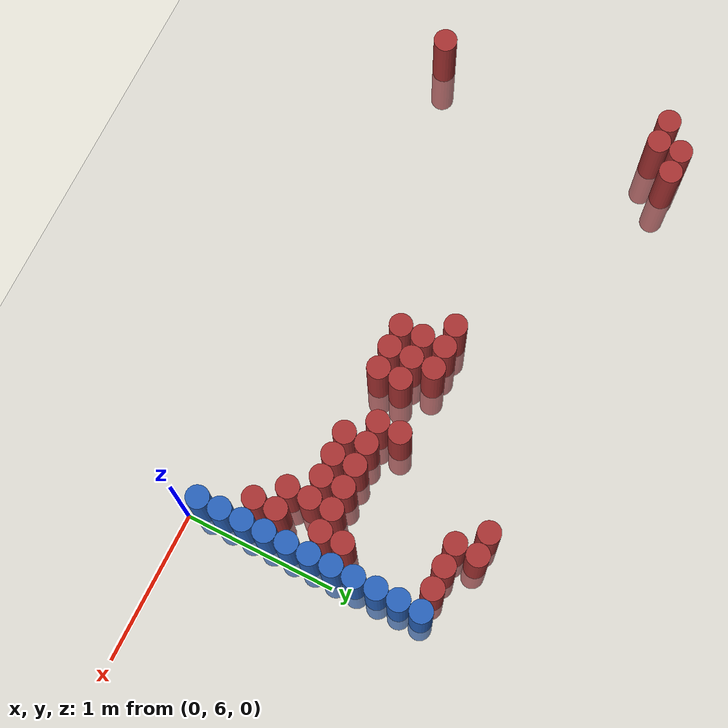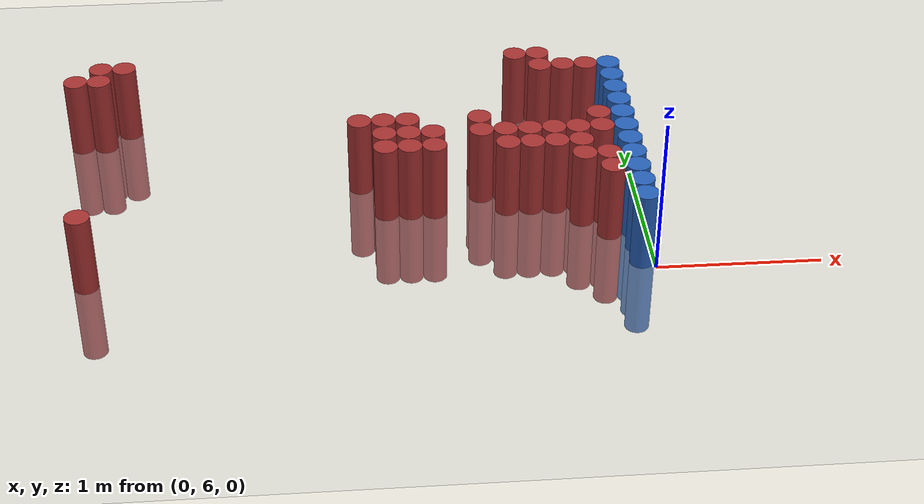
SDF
<sdf version="1.6">
 <world name="default">
  <model name="ground_plane">
   <static>1</static>
   <link name="link">
    <collision name="collision">
     <geometry><plane><normal>0 0 1</normal><size>100 100</size></plane></geometry>
     <surface><friction><ode><mu>100</mu><mu2>50</mu2></ode></friction></surface>
    </collision>
    <visual name="visual">
     <cast_shadows>0</cast_shadows>
     <geometry><plane><normal>0 0 1</normal><size>100 100</size></plane></geometry>
     <material>
      <script><uri>file://media/materials/scripts/gazebo.material</uri><name>Gazebo/Grey</name></script>
     </material>
    </visual>
   </link>
  </model>
  <model name="unit_cylinder_158">
   <static>1</static>
   <pose>-3.525000 7.575000 0.000000 0.000000 0.000000 0.000000</pose>
   <link name="link">
    <inertial>
     <mass>1</mass>
     <inertia><ixx>0.145833</ixx><ixy>0</ixy><ixz>0</ixz><iyy>0.145833</iyy><iyz>0</iyz><izz>0.125</izz></inertia>
    </inertial>
    <collision name="collision">
     <geometry><cylinder><radius>0.075000</radius><length>1</length></cylinder></geometry>
    </collision>
    <visual name="visual">
     <geometry><cylinder><radius>0.075000</radius><length>1</length></cylinder></geometry>
     <material>
      <ambient>0.648000 0.192000 0.192000 1</ambient>
      <diffuse>0.648000 0.192000 0.192000 1</diffuse>
     </material>
     <material>
      <script><name>Gazebo/Grey</name><uri>file://media/materials/scripts/gazebo.material</uri></script>
     </material>
    </visual>
   </link>
  </model>
  <model name="unit_cylinder_161">
   <static>1</static>
   <pose>-3.375000 6.075000 0.000000 0.000000 0.000000 0.000000</pose>
   <link name="link">
    <inertial>
     <mass>1</mass>
     <inertia><ixx>0.145833</ixx><ixy>0</ixy><ixz>0</ixz><iyy>0.145833</iyy><iyz>0</iyz><izz>0.125</izz></inertia>
    </inertial>
    <collision name="collision">
     <geometry><cylinder><radius>0.075000</radius><length>1</length></cylinder></geometry>
    </collision>
    <visual name="visual">
     <geometry><cylinder><radius>0.075000</radius><length>1</length></cylinder></geometry>
     <material>
      <ambient>0.648000 0.192000 0.192000 1</ambient>
      <diffuse>0.648000 0.192000 0.192000 1</diffuse>
     </material>
     <material>
      <script><name>Gazebo/Grey</name><uri>file://media/materials/scripts/gazebo.material</uri></script>
     </material>
    </visual>
   </link>
  </model>
  <model name="unit_cylinder_162">
   <static>1</static>
   <pose>-3.375000 7.575000 0.000000 0.000000 0.000000 0.000000</pose>
   <link name="link">
    <inertial>
     <mass>1</mass>
     <inertia><ixx>0.145833</ixx><ixy>0</ixy><ixz>0</ixz><iyy>0.145833</iyy><iyz>0</iyz><izz>0.125</izz></inertia>
    </inertial>
    <collision name="collision">
     <geometry><cylinder><radius>0.075000</radius><length>1</length></cylinder></geometry>
    </collision>
    <visual name="visual">
     <geometry><cylinder><radius>0.075000</radius><length>1</length></cylinder></geometry>
     <material>
      <ambient>0.648000 0.192000 0.192000 1</ambient>
      <diffuse>0.648000 0.192000 0.192000 1</diffuse>
     </material>
     <material>
      <script><name>Gazebo/Grey</name><uri>file://media/materials/scripts/gazebo.material</uri></script>
     </material>
    </visual>
   </link>
  </model>
  <model name="unit_cylinder_163">
   <static>1</static>
   <pose>-3.375000 7.725000 0.000000 0.000000 0.000000 0.000000</pose>
   <link name="link">
    <inertial>
     <mass>1</mass>
     <inertia><ixx>0.145833</ixx><ixy>0</ixy><ixz>0</ixz><iyy>0.145833</iyy><iyz>0</iyz><izz>0.125</izz></inertia>
    </inertial>
    <collision name="collision">
     <geometry><cylinder><radius>0.075000</radius><length>1</length></cylinder></geometry>
    </collision>
    <visual name="visual">
     <geometry><cylinder><radius>0.075000</radius><length>1</length></cylinder></geometry>
     <material>
      <ambient>0.648000 0.192000 0.192000 1</ambient>
      <diffuse>0.648000 0.192000 0.192000 1</diffuse>
     </material>
     <material>
      <script><name>Gazebo/Grey</name><uri>file://media/materials/scripts/gazebo.material</uri></script>
     </material>
    </visual>
   </link>
  </model>
  <model name="unit_cylinder_165">
   <static>1</static>
   <pose>-3.225000 7.725000 0.000000 0.000000 0.000000 0.000000</pose>
   <link name="link">
    <inertial>
     <mass>1</mass>
     <inertia><ixx>0.145833</ixx><ixy>0</ixy><ixz>0</ixz><iyy>0.145833</iyy><iyz>0</iyz><izz>0.125</izz></inertia>
    </inertial>
    <collision name="collision">
     <geometry><cylinder><radius>0.075000</radius><length>1</length></cylinder></geometry>
    </collision>
    <visual name="visual">
     <geometry><cylinder><radius>0.075000</radius><length>1</length></cylinder></geometry>
     <material>
      <ambient>0.648000 0.192000 0.192000 1</ambient>
      <diffuse>0.648000 0.192000 0.192000 1</diffuse>
     </material>
     <material>
      <script><name>Gazebo/Grey</name><uri>file://media/materials/scripts/gazebo.material</uri></script>
     </material>
    </visual>
   </link>
  </model>
  <model name="unit_cylinder_177">
   <static>1</static>
   <pose>-1.725000 6.975000 0.000000 0.000000 0.000000 0.000000</pose>
   <link name="link">
    <inertial>
     <mass>1</mass>
     <inertia><ixx>0.145833</ixx><ixy>0</ixy><ixz>0</ixz><iyy>0.145833</iyy><iyz>0</iyz><izz>0.125</izz></inertia>
    </inertial>
    <collision name="collision">
     <geometry><cylinder><radius>0.075000</radius><length>1</length></cylinder></geometry>
    </collision>
    <visual name="visual">
     <geometry><cylinder><radius>0.075000</radius><length>1</length></cylinder></geometry>
     <material>
      <ambient>0.648000 0.192000 0.192000 1</ambient>
      <diffuse>0.648000 0.192000 0.192000 1</diffuse>
     </material>
     <material>
      <script><name>Gazebo/Grey</name><uri>file://media/materials/scripts/gazebo.material</uri></script>
     </material>
    </visual>
   </link>
  </model>
  <model name="unit_cylinder_182">
   <static>1</static>
   <pose>-1.575000 6.675000 0.000000 0.000000 0.000000 0.000000</pose>
   <link name="link">
    <inertial>
     <mass>1</mass>
     <inertia><ixx>0.145833</ixx><ixy>0</ixy><ixz>0</ixz><iyy>0.145833</iyy><iyz>0</iyz><izz>0.125</izz></inertia>
    </inertial>
    <collision name="collision">
     <geometry><cylinder><radius>0.075000</radius><length>1</length></cylinder></geometry>
    </collision>
    <visual name="visual">
     <geometry><cylinder><radius>0.075000</radius><length>1</length></cylinder></geometry>
     <material>
      <ambient>0.648000 0.192000 0.192000 1</ambient>
      <diffuse>0.648000 0.192000 0.192000 1</diffuse>
     </material>
     <material>
      <script><name>Gazebo/Grey</name><uri>file://media/materials/scripts/gazebo.material</uri></script>
     </material>
    </visual>
   </link>
  </model>
  <model name="unit_cylinder_183">
   <static>1</static>
   <pose>-1.575000 6.825000 0.000000 0.000000 0.000000 0.000000</pose>
   <link name="link">
    <inertial>
     <mass>1</mass>
     <inertia><ixx>0.145833</ixx><ixy>0</ixy><ixz>0</ixz><iyy>0.145833</iyy><iyz>0</iyz><izz>0.125</izz></inertia>
    </inertial>
    <collision name="collision">
     <geometry><cylinder><radius>0.075000</radius><length>1</length></cylinder></geometry>
    </collision>
    <visual name="visual">
     <geometry><cylinder><radius>0.075000</radius><length>1</length></cylinder></geometry>
     <material>
      <ambient>0.648000 0.192000 0.192000 1</ambient>
      <diffuse>0.648000 0.192000 0.192000 1</diffuse>
     </material>
     <material>
      <script><name>Gazebo/Grey</name><uri>file://media/materials/scripts/gazebo.material</uri></script>
     </material>
    </visual>
   </link>
  </model>
  <model name="unit_cylinder_184">
   <static>1</static>
   <pose>-1.575000 6.975000 0.000000 0.000000 0.000000 0.000000</pose>
   <link name="link">
    <inertial>
     <mass>1</mass>
     <inertia><ixx>0.145833</ixx><ixy>0</ixy><ixz>0</ixz><iyy>0.145833</iyy><iyz>0</iyz><izz>0.125</izz></inertia>
    </inertial>
    <collision name="collision">
     <geometry><cylinder><radius>0.075000</radius><length>1</length></cylinder></geometry>
    </collision>
    <visual name="visual">
     <geometry><cylinder><radius>0.075000</radius><length>1</length></cylinder></geometry>
     <material>
      <ambient>0.648000 0.192000 0.192000 1</ambient>
      <diffuse>0.648000 0.192000 0.192000 1</diffuse>
     </material>
     <material>
      <script><name>Gazebo/Grey</name><uri>file://media/materials/scripts/gazebo.material</uri></script>
     </material>
    </visual>
   </link>
  </model>
  <model name="unit_cylinder_188">
   <static>1</static>
   <pose>-1.425000 6.675000 0.000000 0.000000 0.000000 0.000000</pose>
   <link name="link">
    <inertial>
     <mass>1</mass>
     <inertia><ixx>0.145833</ixx><ixy>0</ixy><ixz>0</ixz><iyy>0.145833</iyy><iyz>0</iyz><izz>0.125</izz></inertia>
    </inertial>
    <collision name="collision">
     <geometry><cylinder><radius>0.075000</radius><length>1</length></cylinder></geometry>
    </collision>
    <visual name="visual">
     <geometry><cylinder><radius>0.075000</radius><length>1</length></cylinder></geometry>
     <material>
      <ambient>0.648000 0.192000 0.192000 1</ambient>
      <diffuse>0.648000 0.192000 0.192000 1</diffuse>
     </material>
     <material>
      <script><name>Gazebo/Grey</name><uri>file://media/materials/scripts/gazebo.material</uri></script>
     </material>
    </visual>
   </link>
  </model>
  <model name="unit_cylinder_189">
   <static>1</static>
   <pose>-1.425000 6.825000 0.000000 0.000000 0.000000 0.000000</pose>
   <link name="link">
    <inertial>
     <mass>1</mass>
     <inertia><ixx>0.145833</ixx><ixy>0</ixy><ixz>0</ixz><iyy>0.145833</iyy><iyz>0</iyz><izz>0.125</izz></inertia>
    </inertial>
    <collision name="collision">
     <geometry><cylinder><radius>0.075000</radius><length>1</length></cylinder></geometry>
    </collision>
    <visual name="visual">
     <geometry><cylinder><radius>0.075000</radius><length>1</length></cylinder></geometry>
     <material>
      <ambient>0.648000 0.192000 0.192000 1</ambient>
      <diffuse>0.648000 0.192000 0.192000 1</diffuse>
     </material>
     <material>
      <script><name>Gazebo/Grey</name><uri>file://media/materials/scripts/gazebo.material</uri></script>
     </material>
    </visual>
   </link>
  </model>
  <model name="unit_cylinder_190">
   <static>1</static>
   <pose>-1.425000 6.975000 0.000000 0.000000 0.000000 0.000000</pose>
   <link name="link">
    <inertial>
     <mass>1</mass>
     <inertia><ixx>0.145833</ixx><ixy>0</ixy><ixz>0</ixz><iyy>0.145833</iyy><iyz>0</iyz><izz>0.125</izz></inertia>
    </inertial>
    <collision name="collision">
     <geometry><cylinder><radius>0.075000</radius><length>1</length></cylinder></geometry>
    </collision>
    <visual name="visual">
     <geometry><cylinder><radius>0.075000</radius><length>1</length></cylinder></geometry>
     <material>
      <ambient>0.648000 0.192000 0.192000 1</ambient>
      <diffuse>0.648000 0.192000 0.192000 1</diffuse>
     </material>
     <material>
      <script><name>Gazebo/Grey</name><uri>file://media/materials/scripts/gazebo.material</uri></script>
     </material>
    </visual>
   </link>
  </model>
  <model name="unit_cylinder_193">
   <static>1</static>
   <pose>-1.275000 6.675000 0.000000 0.000000 0.000000 0.000000</pose>
   <link name="link">
    <inertial>
     <mass>1</mass>
     <inertia><ixx>0.145833</ixx><ixy>0</ixy><ixz>0</ixz><iyy>0.145833</iyy><iyz>0</iyz><izz>0.125</izz></inertia>
    </inertial>
    <collision name="collision">
     <geometry><cylinder><radius>0.075000</radius><length>1</length></cylinder></geometry>
    </collision>
    <visual name="visual">
     <geometry><cylinder><radius>0.075000</radius><length>1</length></cylinder></geometry>
     <material>
      <ambient>0.648000 0.192000 0.192000 1</ambient>
      <diffuse>0.648000 0.192000 0.192000 1</diffuse>
     </material>
     <material>
      <script><name>Gazebo/Grey</name><uri>file://media/materials/scripts/gazebo.material</uri></script>
     </material>
    </visual>
   </link>
  </model>
  <model name="unit_cylinder_194">
   <static>1</static>
   <pose>-1.275000 6.825000 0.000000 0.000000 0.000000 0.000000</pose>
   <link name="link">
    <inertial>
     <mass>1</mass>
     <inertia><ixx>0.145833</ixx><ixy>0</ixy><ixz>0</ixz><iyy>0.145833</iyy><iyz>0</iyz><izz>0.125</izz></inertia>
    </inertial>
    <collision name="collision">
     <geometry><cylinder><radius>0.075000</radius><length>1</length></cylinder></geometry>
    </collision>
    <visual name="visual">
     <geometry><cylinder><radius>0.075000</radius><length>1</length></cylinder></geometry>
     <material>
      <ambient>0.648000 0.192000 0.192000 1</ambient>
      <diffuse>0.648000 0.192000 0.192000 1</diffuse>
     </material>
     <material>
      <script><name>Gazebo/Grey</name><uri>file://media/materials/scripts/gazebo.material</uri></script>
     </material>
    </visual>
   </link>
  </model>
  <model name="unit_cylinder_199">
   <static>1</static>
   <pose>-0.975000 6.825000 0.000000 0.000000 0.000000 0.000000</pose>
   <link name="link">
    <inertial>
     <mass>1</mass>
     <inertia><ixx>0.145833</ixx><ixy>0</ixy><ixz>0</ixz><iyy>0.145833</iyy><iyz>0</iyz><izz>0.125</izz></inertia>
    </inertial>
    <collision name="collision">
     <geometry><cylinder><radius>0.075000</radius><length>1</length></cylinder></geometry>
    </collision>
    <visual name="visual">
     <geometry><cylinder><radius>0.075000</radius><length>1</length></cylinder></geometry>
     <material>
      <ambient>0.648000 0.192000 0.192000 1</ambient>
      <diffuse>0.648000 0.192000 0.192000 1</diffuse>
     </material>
     <material>
      <script><name>Gazebo/Grey</name><uri>file://media/materials/scripts/gazebo.material</uri></script>
     </material>
    </visual>
   </link>
  </model>
  <model name="unit_cylinder_200">
   <static>1</static>
   <pose>-0.975000 6.975000 0.000000 0.000000 0.000000 0.000000</pose>
   <link name="link">
    <inertial>
     <mass>1</mass>
     <inertia><ixx>0.145833</ixx><ixy>0</ixy><ixz>0</ixz><iyy>0.145833</iyy><iyz>0</iyz><izz>0.125</izz></inertia>
    </inertial>
    <collision name="collision">
     <geometry><cylinder><radius>0.075000</radius><length>1</length></cylinder></geometry>
    </collision>
    <visual name="visual">
     <geometry><cylinder><radius>0.075000</radius><length>1</length></cylinder></geometry>
     <material>
      <ambient>0.648000 0.192000 0.192000 1</ambient>
      <diffuse>0.648000 0.192000 0.192000 1</diffuse>
     </material>
     <material>
      <script><name>Gazebo/Grey</name><uri>file://media/materials/scripts/gazebo.material</uri></script>
     </material>
    </visual>
   </link>
  </model>
  <model name="unit_cylinder_202">
   <static>1</static>
   <pose>-0.825000 6.675000 0.000000 0.000000 0.000000 0.000000</pose>
   <link name="link">
    <inertial>
     <mass>1</mass>
     <inertia><ixx>0.145833</ixx><ixy>0</ixy><ixz>0</ixz><iyy>0.145833</iyy><iyz>0</iyz><izz>0.125</izz></inertia>
    </inertial>
    <collision name="collision">
     <geometry><cylinder><radius>0.075000</radius><length>1</length></cylinder></geometry>
    </collision>
    <visual name="visual">
     <geometry><cylinder><radius>0.075000</radius><length>1</length></cylinder></geometry>
     <material>
      <ambient>0.648000 0.192000 0.192000 1</ambient>
      <diffuse>0.648000 0.192000 0.192000 1</diffuse>
     </material>
     <material>
      <script><name>Gazebo/Grey</name><uri>file://media/materials/scripts/gazebo.material</uri></script>
     </material>
    </visual>
   </link>
  </model>
  <model name="unit_cylinder_203">
   <static>1</static>
   <pose>-0.825000 6.825000 0.000000 0.000000 0.000000 0.000000</pose>
   <link name="link">
    <inertial>
     <mass>1</mass>
     <inertia><ixx>0.145833</ixx><ixy>0</ixy><ixz>0</ixz><iyy>0.145833</iyy><iyz>0</iyz><izz>0.125</izz></inertia>
    </inertial>
    <collision name="collision">
     <geometry><cylinder><radius>0.075000</radius><length>1</length></cylinder></geometry>
    </collision>
    <visual name="visual">
     <geometry><cylinder><radius>0.075000</radius><length>1</length></cylinder></geometry>
     <material>
      <ambient>0.648000 0.192000 0.192000 1</ambient>
      <diffuse>0.648000 0.192000 0.192000 1</diffuse>
     </material>
     <material>
      <script><name>Gazebo/Grey</name><uri>file://media/materials/scripts/gazebo.material</uri></script>
     </material>
    </visual>
   </link>
  </model>
  <model name="unit_cylinder_206">
   <static>1</static>
   <pose>-0.675000 6.675000 0.000000 0.000000 0.000000 0.000000</pose>
   <link name="link">
    <inertial>
     <mass>1</mass>
     <inertia><ixx>0.145833</ixx><ixy>0</ixy><ixz>0</ixz><iyy>0.145833</iyy><iyz>0</iyz><izz>0.125</izz></inertia>
    </inertial>
    <collision name="collision">
     <geometry><cylinder><radius>0.075000</radius><length>1</length></cylinder></geometry>
    </collision>
    <visual name="visual">
     <geometry><cylinder><radius>0.075000</radius><length>1</length></cylinder></geometry>
     <material>
      <ambient>0.648000 0.192000 0.192000 1</ambient>
      <diffuse>0.648000 0.192000 0.192000 1</diffuse>
     </material>
     <material>
      <script><name>Gazebo/Grey</name><uri>file://media/materials/scripts/gazebo.material</uri></script>
     </material>
    </visual>
   </link>
  </model>
  <model name="unit_cylinder_207">
   <static>1</static>
   <pose>-0.675000 6.825000 0.000000 0.000000 0.000000 0.000000</pose>
   <link name="link">
    <inertial>
     <mass>1</mass>
     <inertia><ixx>0.145833</ixx><ixy>0</ixy><ixz>0</ixz><iyy>0.145833</iyy><iyz>0</iyz><izz>0.125</izz></inertia>
    </inertial>
    <collision name="collision">
     <geometry><cylinder><radius>0.075000</radius><length>1</length></cylinder></geometry>
    </collision>
    <visual name="visual">
     <geometry><cylinder><radius>0.075000</radius><length>1</length></cylinder></geometry>
     <material>
      <ambient>0.648000 0.192000 0.192000 1</ambient>
      <diffuse>0.648000 0.192000 0.192000 1</diffuse>
     </material>
     <material>
      <script><name>Gazebo/Grey</name><uri>file://media/materials/scripts/gazebo.material</uri></script>
     </material>
    </visual>
   </link>
  </model>
  <model name="unit_cylinder_208">
   <static>1</static>
   <pose>-0.675000 7.725000 0.000000 0.000000 0.000000 0.000000</pose>
   <link name="link">
    <inertial>
     <mass>1</mass>
     <inertia><ixx>0.145833</ixx><ixy>0</ixy><ixz>0</ixz><iyy>0.145833</iyy><iyz>0</iyz><izz>0.125</izz></inertia>
    </inertial>
    <collision name="collision">
     <geometry><cylinder><radius>0.075000</radius><length>1</length></cylinder></geometry>
    </collision>
    <visual name="visual">
     <geometry><cylinder><radius>0.075000</radius><length>1</length></cylinder></geometry>
     <material>
      <ambient>0.648000 0.192000 0.192000 1</ambient>
      <diffuse>0.648000 0.192000 0.192000 1</diffuse>
     </material>
     <material>
      <script><name>Gazebo/Grey</name><uri>file://media/materials/scripts/gazebo.material</uri></script>
     </material>
    </visual>
   </link>
  </model>
  <model name="unit_cylinder_213">
   <static>1</static>
   <pose>-0.525000 6.675000 0.000000 0.000000 0.000000 0.000000</pose>
   <link name="link">
    <inertial>
     <mass>1</mass>
     <inertia><ixx>0.145833</ixx><ixy>0</ixy><ixz>0</ixz><iyy>0.145833</iyy><iyz>0</iyz><izz>0.125</izz></inertia>
    </inertial>
    <collision name="collision">
     <geometry><cylinder><radius>0.075000</radius><length>1</length></cylinder></geometry>
    </collision>
    <visual name="visual">
     <geometry><cylinder><radius>0.075000</radius><length>1</length></cylinder></geometry>
     <material>
      <ambient>0.648000 0.192000 0.192000 1</ambient>
      <diffuse>0.648000 0.192000 0.192000 1</diffuse>
     </material>
     <material>
      <script><name>Gazebo/Grey</name><uri>file://media/materials/scripts/gazebo.material</uri></script>
     </material>
    </visual>
   </link>
  </model>
  <model name="unit_cylinder_214">
   <static>1</static>
   <pose>-0.525000 6.825000 0.000000 0.000000 0.000000 0.000000</pose>
   <link name="link">
    <inertial>
     <mass>1</mass>
     <inertia><ixx>0.145833</ixx><ixy>0</ixy><ixz>0</ixz><iyy>0.145833</iyy><iyz>0</iyz><izz>0.125</izz></inertia>
    </inertial>
    <collision name="collision">
     <geometry><cylinder><radius>0.075000</radius><length>1</length></cylinder></geometry>
    </collision>
    <visual name="visual">
     <geometry><cylinder><radius>0.075000</radius><length>1</length></cylinder></geometry>
     <material>
      <ambient>0.648000 0.192000 0.192000 1</ambient>
      <diffuse>0.648000 0.192000 0.192000 1</diffuse>
     </material>
     <material>
      <script><name>Gazebo/Grey</name><uri>file://media/materials/scripts/gazebo.material</uri></script>
     </material>
    </visual>
   </link>
  </model>
  <model name="unit_cylinder_215">
   <static>1</static>
   <pose>-0.525000 7.575000 0.000000 0.000000 0.000000 0.000000</pose>
   <link name="link">
    <inertial>
     <mass>1</mass>
     <inertia><ixx>0.145833</ixx><ixy>0</ixy><ixz>0</ixz><iyy>0.145833</iyy><iyz>0</iyz><izz>0.125</izz></inertia>
    </inertial>
    <collision name="collision">
     <geometry><cylinder><radius>0.075000</radius><length>1</length></cylinder></geometry>
    </collision>
    <visual name="visual">
     <geometry><cylinder><radius>0.075000</radius><length>1</length></cylinder></geometry>
     <material>
      <ambient>0.648000 0.192000 0.192000 1</ambient>
      <diffuse>0.648000 0.192000 0.192000 1</diffuse>
     </material>
     <material>
      <script><name>Gazebo/Grey</name><uri>file://media/materials/scripts/gazebo.material</uri></script>
     </material>
    </visual>
   </link>
  </model>
  <model name="unit_cylinder_216">
   <static>1</static>
   <pose>-0.525000 7.725000 0.000000 0.000000 0.000000 0.000000</pose>
   <link name="link">
    <inertial>
     <mass>1</mass>
     <inertia><ixx>0.145833</ixx><ixy>0</ixy><ixz>0</ixz><iyy>0.145833</iyy><iyz>0</iyz><izz>0.125</izz></inertia>
    </inertial>
    <collision name="collision">
     <geometry><cylinder><radius>0.075000</radius><length>1</length></cylinder></geometry>
    </collision>
    <visual name="visual">
     <geometry><cylinder><radius>0.075000</radius><length>1</length></cylinder></geometry>
     <material>
      <ambient>0.648000 0.192000 0.192000 1</ambient>
      <diffuse>0.648000 0.192000 0.192000 1</diffuse>
     </material>
     <material>
      <script><name>Gazebo/Grey</name><uri>file://media/materials/scripts/gazebo.material</uri></script>
     </material>
    </visual>
   </link>
  </model>
  <model name="unit_cylinder_221">
   <static>1</static>
   <pose>-0.375000 6.525000 0.000000 0.000000 0.000000 0.000000</pose>
   <link name="link">
    <inertial>
     <mass>1</mass>
     <inertia><ixx>0.145833</ixx><ixy>0</ixy><ixz>0</ixz><iyy>0.145833</iyy><iyz>0</iyz><izz>0.125</izz></inertia>
    </inertial>
    <collision name="collision">
     <geometry><cylinder><radius>0.075000</radius><length>1</length></cylinder></geometry>
    </collision>
    <visual name="visual">
     <geometry><cylinder><radius>0.075000</radius><length>1</length></cylinder></geometry>
     <material>
      <ambient>0.648000 0.192000 0.192000 1</ambient>
      <diffuse>0.648000 0.192000 0.192000 1</diffuse>
     </material>
     <material>
      <script><name>Gazebo/Grey</name><uri>file://media/materials/scripts/gazebo.material</uri></script>
     </material>
    </visual>
   </link>
  </model>
  <model name="unit_cylinder_222">
   <static>1</static>
   <pose>-0.375000 6.675000 0.000000 0.000000 0.000000 0.000000</pose>
   <link name="link">
    <inertial>
     <mass>1</mass>
     <inertia><ixx>0.145833</ixx><ixy>0</ixy><ixz>0</ixz><iyy>0.145833</iyy><iyz>0</iyz><izz>0.125</izz></inertia>
    </inertial>
    <collision name="collision">
     <geometry><cylinder><radius>0.075000</radius><length>1</length></cylinder></geometry>
    </collision>
    <visual name="visual">
     <geometry><cylinder><radius>0.075000</radius><length>1</length></cylinder></geometry>
     <material>
      <ambient>0.648000 0.192000 0.192000 1</ambient>
      <diffuse>0.648000 0.192000 0.192000 1</diffuse>
     </material>
     <material>
      <script><name>Gazebo/Grey</name><uri>file://media/materials/scripts/gazebo.material</uri></script>
     </material>
    </visual>
   </link>
  </model>
  <model name="unit_cylinder_223">
   <static>1</static>
   <pose>-0.375000 6.825000 0.000000 0.000000 0.000000 0.000000</pose>
   <link name="link">
    <inertial>
     <mass>1</mass>
     <inertia><ixx>0.145833</ixx><ixy>0</ixy><ixz>0</ixz><iyy>0.145833</iyy><iyz>0</iyz><izz>0.125</izz></inertia>
    </inertial>
    <collision name="collision">
     <geometry><cylinder><radius>0.075000</radius><length>1</length></cylinder></geometry>
    </collision>
    <visual name="visual">
     <geometry><cylinder><radius>0.075000</radius><length>1</length></cylinder></geometry>
     <material>
      <ambient>0.648000 0.192000 0.192000 1</ambient>
      <diffuse>0.648000 0.192000 0.192000 1</diffuse>
     </material>
     <material>
      <script><name>Gazebo/Grey</name><uri>file://media/materials/scripts/gazebo.material</uri></script>
     </material>
    </visual>
   </link>
  </model>
  <model name="unit_cylinder_224">
   <static>1</static>
   <pose>-0.375000 7.575000 0.000000 0.000000 0.000000 0.000000</pose>
   <link name="link">
    <inertial>
     <mass>1</mass>
     <inertia><ixx>0.145833</ixx><ixy>0</ixy><ixz>0</ixz><iyy>0.145833</iyy><iyz>0</iyz><izz>0.125</izz></inertia>
    </inertial>
    <collision name="collision">
     <geometry><cylinder><radius>0.075000</radius><length>1</length></cylinder></geometry>
    </collision>
    <visual name="visual">
     <geometry><cylinder><radius>0.075000</radius><length>1</length></cylinder></geometry>
     <material>
      <ambient>0.648000 0.192000 0.192000 1</ambient>
      <diffuse>0.648000 0.192000 0.192000 1</diffuse>
     </material>
     <material>
      <script><name>Gazebo/Grey</name><uri>file://media/materials/scripts/gazebo.material</uri></script>
     </material>
    </visual>
   </link>
  </model>
  <model name="unit_cylinder_231">
   <static>1</static>
   <pose>-0.225000 6.375000 0.000000 0.000000 0.000000 0.000000</pose>
   <link name="link">
    <inertial>
     <mass>1</mass>
     <inertia><ixx>0.145833</ixx><ixy>0</ixy><ixz>0</ixz><iyy>0.145833</iyy><iyz>0</iyz><izz>0.125</izz></inertia>
    </inertial>
    <collision name="collision">
     <geometry><cylinder><radius>0.075000</radius><length>1</length></cylinder></geometry>
    </collision>
    <visual name="visual">
     <geometry><cylinder><radius>0.075000</radius><length>1</length></cylinder></geometry>
     <material>
      <ambient>0.648000 0.192000 0.192000 1</ambient>
      <diffuse>0.648000 0.192000 0.192000 1</diffuse>
     </material>
     <material>
      <script><name>Gazebo/Grey</name><uri>file://media/materials/scripts/gazebo.material</uri></script>
     </material>
    </visual>
   </link>
  </model>
  <model name="unit_cylinder_232">
   <static>1</static>
   <pose>-0.225000 6.525000 0.000000 0.000000 0.000000 0.000000</pose>
   <link name="link">
    <inertial>
     <mass>1</mass>
     <inertia><ixx>0.145833</ixx><ixy>0</ixy><ixz>0</ixz><iyy>0.145833</iyy><iyz>0</iyz><izz>0.125</izz></inertia>
    </inertial>
    <collision name="collision">
     <geometry><cylinder><radius>0.075000</radius><length>1</length></cylinder></geometry>
    </collision>
    <visual name="visual">
     <geometry><cylinder><radius>0.075000</radius><length>1</length></cylinder></geometry>
     <material>
      <ambient>0.648000 0.192000 0.192000 1</ambient>
      <diffuse>0.648000 0.192000 0.192000 1</diffuse>
     </material>
     <material>
      <script><name>Gazebo/Grey</name><uri>file://media/materials/scripts/gazebo.material</uri></script>
     </material>
    </visual>
   </link>
  </model>
  <model name="unit_cylinder_233">
   <static>1</static>
   <pose>-0.225000 6.825000 0.000000 0.000000 0.000000 0.000000</pose>
   <link name="link">
    <inertial>
     <mass>1</mass>
     <inertia><ixx>0.145833</ixx><ixy>0</ixy><ixz>0</ixz><iyy>0.145833</iyy><iyz>0</iyz><izz>0.125</izz></inertia>
    </inertial>
    <collision name="collision">
     <geometry><cylinder><radius>0.075000</radius><length>1</length></cylinder></geometry>
    </collision>
    <visual name="visual">
     <geometry><cylinder><radius>0.075000</radius><length>1</length></cylinder></geometry>
     <material>
      <ambient>0.648000 0.192000 0.192000 1</ambient>
      <diffuse>0.648000 0.192000 0.192000 1</diffuse>
     </material>
     <material>
      <script><name>Gazebo/Grey</name><uri>file://media/materials/scripts/gazebo.material</uri></script>
     </material>
    </visual>
   </link>
  </model>
  <model name="unit_cylinder_234">
   <static>1</static>
   <pose>-0.225000 6.975000 0.000000 0.000000 0.000000 0.000000</pose>
   <link name="link">
    <inertial>
     <mass>1</mass>
     <inertia><ixx>0.145833</ixx><ixy>0</ixy><ixz>0</ixz><iyy>0.145833</iyy><iyz>0</iyz><izz>0.125</izz></inertia>
    </inertial>
    <collision name="collision">
     <geometry><cylinder><radius>0.075000</radius><length>1</length></cylinder></geometry>
    </collision>
    <visual name="visual">
     <geometry><cylinder><radius>0.075000</radius><length>1</length></cylinder></geometry>
     <material>
      <ambient>0.648000 0.192000 0.192000 1</ambient>
      <diffuse>0.648000 0.192000 0.192000 1</diffuse>
     </material>
     <material>
      <script><name>Gazebo/Grey</name><uri>file://media/materials/scripts/gazebo.material</uri></script>
     </material>
    </visual>
   </link>
  </model>
  <model name="unit_cylinder_235">
   <static>1</static>
   <pose>-0.225000 7.575000 0.000000 0.000000 0.000000 0.000000</pose>
   <link name="link">
    <inertial>
     <mass>1</mass>
     <inertia><ixx>0.145833</ixx><ixy>0</ixy><ixz>0</ixz><iyy>0.145833</iyy><iyz>0</iyz><izz>0.125</izz></inertia>
    </inertial>
    <collision name="collision">
     <geometry><cylinder><radius>0.075000</radius><length>1</length></cylinder></geometry>
    </collision>
    <visual name="visual">
     <geometry><cylinder><radius>0.075000</radius><length>1</length></cylinder></geometry>
     <material>
      <ambient>0.648000 0.192000 0.192000 1</ambient>
      <diffuse>0.648000 0.192000 0.192000 1</diffuse>
     </material>
     <material>
      <script><name>Gazebo/Grey</name><uri>file://media/materials/scripts/gazebo.material</uri></script>
     </material>
    </visual>
   </link>
  </model>
  <model name="unit_cylinder_251">
   <static>1</static>
   <pose>-0.075000 6.075000 0.000000 0.000000 0.000000 0.000000</pose>
   <link name="link">
    <inertial>
     <mass>1</mass>
     <inertia><ixx>0.145833</ixx><ixy>0</ixy><ixz>0</ixz><iyy>0.145833</iyy><iyz>0</iyz><izz>0.125</izz></inertia>
    </inertial>
    <collision name="collision">
     <geometry><cylinder><radius>0.075000</radius><length>1</length></cylinder></geometry>
    </collision>
    <visual name="visual">
     <geometry><cylinder><radius>0.075000</radius><length>1</length></cylinder></geometry>
     <material>
      <ambient>0.152000 0.379000 0.720000 1</ambient>
      <diffuse>0.152000 0.379000 0.720000 1</diffuse>
     </material>
     <material>
      <script><name>Gazebo/Grey</name><uri>file://media/materials/scripts/gazebo.material</uri></script>
     </material>
    </visual>
   </link>
  </model>
  <model name="unit_cylinder_252">
   <static>1</static>
   <pose>-0.075000 6.225000 0.000000 0.000000 0.000000 0.000000</pose>
   <link name="link">
    <inertial>
     <mass>1</mass>
     <inertia><ixx>0.145833</ixx><ixy>0</ixy><ixz>0</ixz><iyy>0.145833</iyy><iyz>0</iyz><izz>0.125</izz></inertia>
    </inertial>
    <collision name="collision">
     <geometry><cylinder><radius>0.075000</radius><length>1</length></cylinder></geometry>
    </collision>
    <visual name="visual">
     <geometry><cylinder><radius>0.075000</radius><length>1</length></cylinder></geometry>
     <material>
      <ambient>0.152000 0.379000 0.720000 1</ambient>
      <diffuse>0.152000 0.379000 0.720000 1</diffuse>
     </material>
     <material>
      <script><name>Gazebo/Grey</name><uri>file://media/materials/scripts/gazebo.material</uri></script>
     </material>
    </visual>
   </link>
  </model>
  <model name="unit_cylinder_253">
   <static>1</static>
   <pose>-0.075000 6.375000 0.000000 0.000000 0.000000 0.000000</pose>
   <link name="link">
    <inertial>
     <mass>1</mass>
     <inertia><ixx>0.145833</ixx><ixy>0</ixy><ixz>0</ixz><iyy>0.145833</iyy><iyz>0</iyz><izz>0.125</izz></inertia>
    </inertial>
    <collision name="collision">
     <geometry><cylinder><radius>0.075000</radius><length>1</length></cylinder></geometry>
    </collision>
    <visual name="visual">
     <geometry><cylinder><radius>0.075000</radius><length>1</length></cylinder></geometry>
     <material>
      <ambient>0.152000 0.379000 0.720000 1</ambient>
      <diffuse>0.152000 0.379000 0.720000 1</diffuse>
     </material>
     <material>
      <script><name>Gazebo/Grey</name><uri>file://media/materials/scripts/gazebo.material</uri></script>
     </material>
    </visual>
   </link>
  </model>
  <model name="unit_cylinder_254">
   <static>1</static>
   <pose>-0.075000 6.525000 0.000000 0.000000 0.000000 0.000000</pose>
   <link name="link">
    <inertial>
     <mass>1</mass>
     <inertia><ixx>0.145833</ixx><ixy>0</ixy><ixz>0</ixz><iyy>0.145833</iyy><iyz>0</iyz><izz>0.125</izz></inertia>
    </inertial>
    <collision name="collision">
     <geometry><cylinder><radius>0.075000</radius><length>1</length></cylinder></geometry>
    </collision>
    <visual name="visual">
     <geometry><cylinder><radius>0.075000</radius><length>1</length></cylinder></geometry>
     <material>
      <ambient>0.152000 0.379000 0.720000 1</ambient>
      <diffuse>0.152000 0.379000 0.720000 1</diffuse>
     </material>
     <material>
      <script><name>Gazebo/Grey</name><uri>file://media/materials/scripts/gazebo.material</uri></script>
     </material>
    </visual>
   </link>
  </model>
  <model name="unit_cylinder_255">
   <static>1</static>
   <pose>-0.075000 6.675000 0.000000 0.000000 0.000000 0.000000</pose>
   <link name="link">
    <inertial>
     <mass>1</mass>
     <inertia><ixx>0.145833</ixx><ixy>0</ixy><ixz>0</ixz><iyy>0.145833</iyy><iyz>0</iyz><izz>0.125</izz></inertia>
    </inertial>
    <collision name="collision">
     <geometry><cylinder><radius>0.075000</radius><length>1</length></cylinder></geometry>
    </collision>
    <visual name="visual">
     <geometry><cylinder><radius>0.075000</radius><length>1</length></cylinder></geometry>
     <material>
      <ambient>0.152000 0.379000 0.720000 1</ambient>
      <diffuse>0.152000 0.379000 0.720000 1</diffuse>
     </material>
     <material>
      <script><name>Gazebo/Grey</name><uri>file://media/materials/scripts/gazebo.material</uri></script>
     </material>
    </visual>
   </link>
  </model>
  <model name="unit_cylinder_256">
   <static>1</static>
   <pose>-0.075000 6.825000 0.000000 0.000000 0.000000 0.000000</pose>
   <link name="link">
    <inertial>
     <mass>1</mass>
     <inertia><ixx>0.145833</ixx><ixy>0</ixy><ixz>0</ixz><iyy>0.145833</iyy><iyz>0</iyz><izz>0.125</izz></inertia>
    </inertial>
    <collision name="collision">
     <geometry><cylinder><radius>0.075000</radius><length>1</length></cylinder></geometry>
    </collision>
    <visual name="visual">
     <geometry><cylinder><radius>0.075000</radius><length>1</length></cylinder></geometry>
     <material>
      <ambient>0.152000 0.379000 0.720000 1</ambient>
      <diffuse>0.152000 0.379000 0.720000 1</diffuse>
     </material>
     <material>
      <script><name>Gazebo/Grey</name><uri>file://media/materials/scripts/gazebo.material</uri></script>
     </material>
    </visual>
   </link>
  </model>
  <model name="unit_cylinder_257">
   <static>1</static>
   <pose>-0.075000 6.975000 0.000000 0.000000 0.000000 0.000000</pose>
   <link name="link">
    <inertial>
     <mass>1</mass>
     <inertia><ixx>0.145833</ixx><ixy>0</ixy><ixz>0</ixz><iyy>0.145833</iyy><iyz>0</iyz><izz>0.125</izz></inertia>
    </inertial>
    <collision name="collision">
     <geometry><cylinder><radius>0.075000</radius><length>1</length></cylinder></geometry>
    </collision>
    <visual name="visual">
     <geometry><cylinder><radius>0.075000</radius><length>1</length></cylinder></geometry>
     <material>
      <ambient>0.152000 0.379000 0.720000 1</ambient>
      <diffuse>0.152000 0.379000 0.720000 1</diffuse>
     </material>
     <material>
      <script><name>Gazebo/Grey</name><uri>file://media/materials/scripts/gazebo.material</uri></script>
     </material>
    </visual>
   </link>
  </model>
  <model name="unit_cylinder_258">
   <static>1</static>
   <pose>-0.075000 7.125000 0.000000 0.000000 0.000000 0.000000</pose>
   <link name="link">
    <inertial>
     <mass>1</mass>
     <inertia><ixx>0.145833</ixx><ixy>0</ixy><ixz>0</ixz><iyy>0.145833</iyy><iyz>0</iyz><izz>0.125</izz></inertia>
    </inertial>
    <collision name="collision">
     <geometry><cylinder><radius>0.075000</radius><length>1</length></cylinder></geometry>
    </collision>
    <visual name="visual">
     <geometry><cylinder><radius>0.075000</radius><length>1</length></cylinder></geometry>
     <material>
      <ambient>0.152000 0.379000 0.720000 1</ambient>
      <diffuse>0.152000 0.379000 0.720000 1</diffuse>
     </material>
     <material>
      <script><name>Gazebo/Grey</name><uri>file://media/materials/scripts/gazebo.material</uri></script>
     </material>
    </visual>
   </link>
  </model>
  <model name="unit_cylinder_259">
   <static>1</static>
   <pose>-0.075000 7.275000 0.000000 0.000000 0.000000 0.000000</pose>
   <link name="link">
    <inertial>
     <mass>1</mass>
     <inertia><ixx>0.145833</ixx><ixy>0</ixy><ixz>0</ixz><iyy>0.145833</iyy><iyz>0</iyz><izz>0.125</izz></inertia>
    </inertial>
    <collision name="collision">
     <geometry><cylinder><radius>0.075000</radius><length>1</length></cylinder></geometry>
    </collision>
    <visual name="visual">
     <geometry><cylinder><radius>0.075000</radius><length>1</length></cylinder></geometry>
     <material>
      <ambient>0.152000 0.379000 0.720000 1</ambient>
      <diffuse>0.152000 0.379000 0.720000 1</diffuse>
     </material>
     <material>
      <script><name>Gazebo/Grey</name><uri>file://media/materials/scripts/gazebo.material</uri></script>
     </material>
    </visual>
   </link>
  </model>
  <model name="unit_cylinder_260">
   <static>1</static>
   <pose>-0.075000 7.425000 0.000000 0.000000 0.000000 0.000000</pose>
   <link name="link">
    <inertial>
     <mass>1</mass>
     <inertia><ixx>0.145833</ixx><ixy>0</ixy><ixz>0</ixz><iyy>0.145833</iyy><iyz>0</iyz><izz>0.125</izz></inertia>
    </inertial>
    <collision name="collision">
     <geometry><cylinder><radius>0.075000</radius><length>1</length></cylinder></geometry>
    </collision>
    <visual name="visual">
     <geometry><cylinder><radius>0.075000</radius><length>1</length></cylinder></geometry>
     <material>
      <ambient>0.152000 0.379000 0.720000 1</ambient>
      <diffuse>0.152000 0.379000 0.720000 1</diffuse>
     </material>
     <material>
      <script><name>Gazebo/Grey</name><uri>file://media/materials/scripts/gazebo.material</uri></script>
     </material>
    </visual>
   </link>
  </model>
  <model name="unit_cylinder_261">
   <static>1</static>
   <pose>-0.075000 7.575000 0.000000 0.000000 0.000000 0.000000</pose>
   <link name="link">
    <inertial>
     <mass>1</mass>
     <inertia><ixx>0.145833</ixx><ixy>0</ixy><ixz>0</ixz><iyy>0.145833</iyy><iyz>0</iyz><izz>0.125</izz></inertia>
    </inertial>
    <collision name="collision">
     <geometry><cylinder><radius>0.075000</radius><length>1</length></cylinder></geometry>
    </collision>
    <visual name="visual">
     <geometry><cylinder><radius>0.075000</radius><length>1</length></cylinder></geometry>
     <material>
      <ambient>0.152000 0.379000 0.720000 1</ambient>
      <diffuse>0.152000 0.379000 0.720000 1</diffuse>
     </material>
     <material>
      <script><name>Gazebo/Grey</name><uri>file://media/materials/scripts/gazebo.material</uri></script>
     </material>
    </visual>
   </link>
  </model>
 </world>
</sdf>
